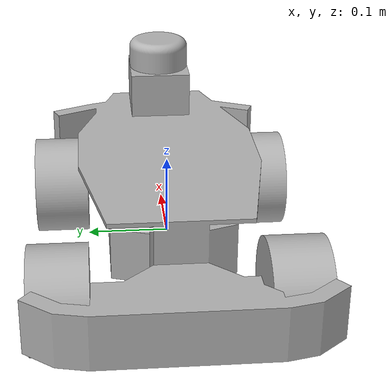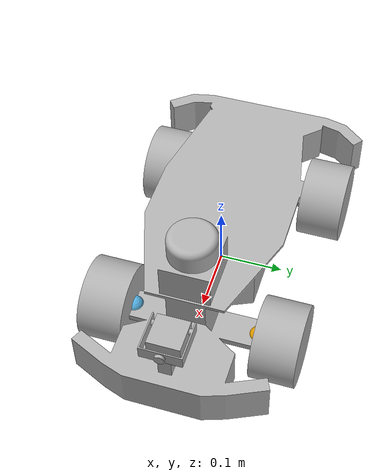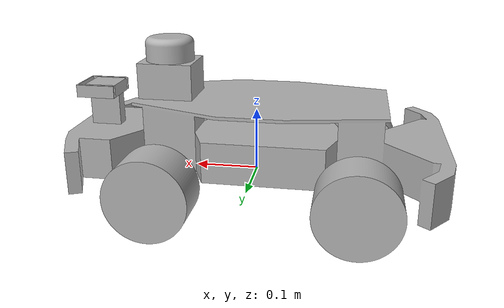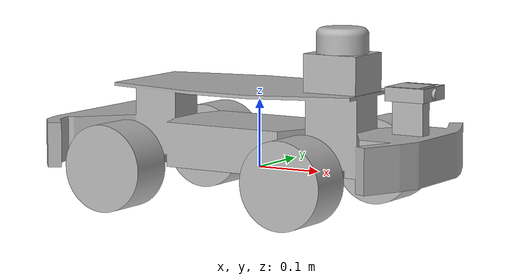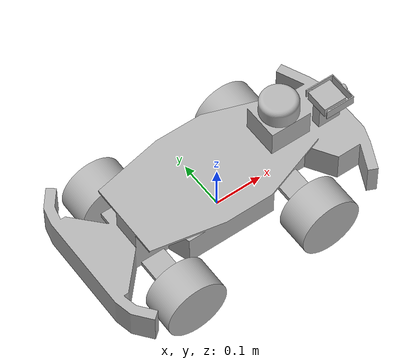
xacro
<?xml version="1.0" ?>
<robot name="AutoCar" xmlns:xacro="http://www.ros.org/wiki/xacro">

<xacro:include filename="$(find auto_car_description)/urdf/materials.xacro" />
<xacro:include filename="$(find auto_car_description)/urdf/AutoCar.trans" />
<xacro:include filename="$(find auto_car_description)/urdf/AutoCar.gazebo" />
<link name="base_link">
  <inertial>
    <origin xyz="0.006241047940893729 1.7542466020202997e-05 0.04792208933122006" rpy="0 0 0"/>
    <mass value="51.74527306163868"/>
    <inertia ixx="0.210744" iyy="1.719578" izz="1.775248" ixy="-0.00012" iyz="-9.1e-05" ixz="-0.04364"/>
  </inertial>
  <visual>
    <origin xyz="0 0 0" rpy="0 0 0"/>
    <geometry>
      <mesh filename="file://$(find auto_car_description)/meshes/base_link.stl" scale="0.001 0.001 0.001"/>
    </geometry>
    <material name="silver"/>
  </visual>
  <collision>
    <origin xyz="0 0 0" rpy="0 0 0"/>
    <geometry>
      <mesh filename="file://$(find auto_car_description)/meshes/base_link.stl" scale="0.001 0.001 0.001"/>
    </geometry>
  </collision>
</link>

<link name="front_left_wheel_1">
  <inertial>
    <origin xyz="0.0 0.035 0.0" rpy="0 0 0"/>
    <mass value="7.0709459482525325"/>
    <inertia ixx="0.010128" iyy="0.014481" izz="0.010128" ixy="0.0" iyz="0.0" ixz="0.0"/>
  </inertial>
  <visual>
    <origin xyz="-0.135 -0.1 -0.005" rpy="0 0 0"/>
    <geometry>
      <mesh filename="file://$(find auto_car_description)/meshes/front_left_wheel_1.stl" scale="0.001 0.001 0.001"/>
    </geometry>
    <material name="silver"/>
  </visual>
  <collision>
    <origin xyz="-0.135 -0.1 -0.005" rpy="0 0 0"/>
    <geometry>
      <mesh filename="file://$(find auto_car_description)/meshes/front_left_wheel_1.stl" scale="0.001 0.001 0.001"/>
    </geometry>
  </collision>
</link>

<link name="front_right_wheel_1">
  <inertial>
    <origin xyz="0.0 -0.035 0.0" rpy="0 0 0"/>
    <mass value="7.0709459482525325"/>
    <inertia ixx="0.010128" iyy="0.014481" izz="0.010128" ixy="0.0" iyz="0.0" ixz="0.0"/>
  </inertial>
  <visual>
    <origin xyz="-0.135 0.1 -0.005" rpy="0 0 0"/>
    <geometry>
      <mesh filename="file://$(find auto_car_description)/meshes/front_right_wheel_1.stl" scale="0.001 0.001 0.001"/>
    </geometry>
    <material name="silver"/>
  </visual>
  <collision>
    <origin xyz="-0.135 0.1 -0.005" rpy="0 0 0"/>
    <geometry>
      <mesh filename="file://$(find auto_car_description)/meshes/front_right_wheel_1.stl" scale="0.001 0.001 0.001"/>
    </geometry>
  </collision>
</link>

<link name="rear_left_wheel_1">
  <inertial>
    <origin xyz="0.0 0.035 0.0" rpy="0 0 0"/>
    <mass value="7.0709459482525325"/>
    <inertia ixx="0.010128" iyy="0.014481" izz="0.010128" ixy="0.0" iyz="0.0" ixz="-0.0"/>
  </inertial>
  <visual>
    <origin xyz="0.165 -0.1 -0.005" rpy="0 0 0"/>
    <geometry>
      <mesh filename="file://$(find auto_car_description)/meshes/rear_left_wheel_1.stl" scale="0.001 0.001 0.001"/>
    </geometry>
    <material name="silver"/>
  </visual>
  <collision>
    <origin xyz="0.165 -0.1 -0.005" rpy="0 0 0"/>
    <geometry>
      <mesh filename="file://$(find auto_car_description)/meshes/rear_left_wheel_1.stl" scale="0.001 0.001 0.001"/>
    </geometry>
  </collision>
</link>

<link name="rear_right_wheel_1">
  <inertial>
    <origin xyz="0.0 -0.035 0.0" rpy="0 0 0"/>
    <mass value="7.0709459482525325"/>
    <inertia ixx="0.010128" iyy="0.014481" izz="0.010128" ixy="0.0" iyz="-0.0" ixz="-0.0"/>
  </inertial>
  <visual>
    <origin xyz="0.165 0.1 -0.005" rpy="0 0 0"/>
    <geometry>
      <mesh filename="file://$(find auto_car_description)/meshes/rear_right_wheel_1.stl" scale="0.001 0.001 0.001"/>
    </geometry>
    <material name="silver"/>
  </visual>
  <collision>
    <origin xyz="0.165 0.1 -0.005" rpy="0 0 0"/>
    <geometry>
      <mesh filename="file://$(find auto_car_description)/meshes/rear_right_wheel_1.stl" scale="0.001 0.001 0.001"/>
    </geometry>
  </collision>
</link>

<link name="camera_rotate_servo_1">
  <inertial>
    <origin xyz="0.001018906391389518 -1.7763568394002506e-16 0.00999999999998398" rpy="0 0 0"/>
    <mass value="0.3675302288901849"/>
    <inertia ixx="9e-05" iyy="8.9e-05" izz="0.000152" ixy="0.0" iyz="0.0" ixz="-0.0"/>
  </inertial>
  <visual>
    <origin xyz="-0.250626 -0.0 -0.116" rpy="0 0 0"/>
    <geometry>
      <mesh filename="file://$(find auto_car_description)/meshes/camera_rotate_servo_1.stl" scale="0.001 0.001 0.001"/>
    </geometry>
    <material name="silver"/>
  </visual>
  <collision>
    <origin xyz="-0.250626 -0.0 -0.116" rpy="0 0 0"/>
    <geometry>
      <mesh filename="file://$(find auto_car_description)/meshes/camera_rotate_servo_1.stl" scale="0.001 0.001 0.001"/>
    </geometry>
  </collision>
</link>

<link name="camera_tilt_servo_1">
  <inertial>
    <origin xyz="0.02297270847794408 3.293785511004899e-10 1.1765838303645637e-11" rpy="0 0 0"/>
    <mass value="0.09526148376679884"/>
    <inertia ixx="5.4e-05" iyy="5.3e-05" izz="0.000103" ixy="-0.0" iyz="-0.0" ixz="-0.0"/>
  </inertial>
  <visual>
    <origin xyz="-0.235626 -0.0 -0.126" rpy="0 0 0"/>
    <geometry>
      <mesh filename="file://$(find auto_car_description)/meshes/camera_tilt_servo_1.stl" scale="0.001 0.001 0.001"/>
    </geometry>
    <material name="silver"/>
  </visual>
  <collision>
    <origin xyz="-0.235626 -0.0 -0.126" rpy="0 0 0"/>
    <geometry>
      <mesh filename="file://$(find auto_car_description)/meshes/camera_tilt_servo_1.stl" scale="0.001 0.001 0.001"/>
    </geometry>
  </collision>
</link>

<link name="lidar_1">
  <inertial>
    <origin xyz="-1.4978991194625202e-07 -6.94672942983649e-08 0.018020517916249423" rpy="0 0 0"/>
    <mass value="1.2797567850628393"/>
    <inertia ixx="0.000591" iyy="0.000591" izz="0.000902" ixy="-0.0" iyz="0.0" ixz="0.0"/>
  </inertial>
  <visual>
    <origin xyz="-0.138818 -0.000316 -0.176" rpy="0 0 0"/>
    <geometry>
      <mesh filename="file://$(find auto_car_description)/meshes/lidar_1.stl" scale="0.001 0.001 0.001"/>
    </geometry>
    <material name="silver"/>
  </visual>
  <collision>
    <origin xyz="-0.138818 -0.000316 -0.176" rpy="0 0 0"/>
    <geometry>
      <mesh filename="file://$(find auto_car_description)/meshes/lidar_1.stl" scale="0.001 0.001 0.001"/>
    </geometry>
  </collision>
</link>

<link name="front_left_hinge">
  <visual>
    <origin rpy="0 0 0" xyz="0 0 0"/>
    <geometry>
      <sphere radius="0.015"/>
    </geometry>
  </visual>
</link>
<joint name="front_left_hinge_joint" type="revolute">
  <parent link="base_link"/>
  <child link="front_left_hinge"/>
  <origin rpy="0 0 0" xyz="0.135 0.1 0.005"/>
  <axis xyz="0 0 1"/>
  <limit effort="10" lower="-0.34" upper="0.34" velocity="100"/>
</joint>

<link name="front_right_hinge">
  <visual>
    <origin rpy="0 0 0" xyz="0 0 0"/>
    <geometry>
      <sphere radius="0.015"/>
    </geometry>
  </visual>
</link>
<joint name="front_right_hinge_joint" type="revolute">
  <parent link="base_link"/>
  <child link="front_right_hinge"/>
  <origin rpy="0 0 0" xyz="0.135 -0.1 0.005"/>
  <axis xyz="0 0 1"/>
  <limit effort="10" lower="-0.34" upper="0.34" velocity="100"/>
</joint>

<link name="imu_link">
  <collision>
    <origin xyz="0 0 0" rpy="0 0 0"/>
    <geometry>
      <box size="0.1 0.1 0.1"/>
    </geometry>
  </collision>
  <inertial>
    <mass value="1e-5" />
    <origin xyz="0 0 0" rpy="0 0 0"/>
    <inertia ixx="1e-6" ixy="0" ixz="0" iyy="1e-6" iyz="0" izz="1e-6" />
  </inertial>
</link>

<joint name="imu_joint" type="fixed">
  <origin xyz="-0.039 0 0.0859" rpy="0 0 0"/>
  <parent link="base_link"/>
  <child link="imu_link"/>
</joint>

<joint name="joint_front_left" type="continuous">
  <origin xyz="0 0 0" rpy="0 0 0"/>
  <parent link="front_left_hinge"/>
  <child link="front_left_wheel_1"/>
  <axis xyz="0.0 1.0 0.0"/>
</joint>

<joint name="joint_front_right" type="continuous">
  <origin xyz="0 0 0" rpy="0 0 0"/>
  <parent link="front_right_hinge"/>
  <child link="front_right_wheel_1"/>
  <axis xyz="0.0 -1.0 0.0"/>
</joint>

<joint name="joint_rear_left" type="continuous">
  <origin xyz="-0.165 0.1 0.005" rpy="0 0 0"/>
  <parent link="base_link"/>
  <child link="rear_left_wheel_1"/>
  <axis xyz="0.0 1.0 0.0"/>
</joint>

<joint name="joint_rear_right" type="continuous">
  <origin xyz="-0.165 -0.1 0.005" rpy="0 0 0"/>
  <parent link="base_link"/>
  <child link="rear_right_wheel_1"/>
  <axis xyz="0.0 -1.0 0.0"/>
</joint>

<joint name="joint_cam_rotate" type="continuous">
  <origin xyz="0.250626 0.0 0.116" rpy="0 0 0"/>
  <parent link="base_link"/>
  <child link="camera_rotate_servo_1"/>
  <axis xyz="0.0 0.0 1.0"/>
</joint>

<joint name="joint_cam_tilt" type="continuous">
  <origin xyz="-0.015 0.0 0.01" rpy="0 0 0"/>
  <parent link="camera_rotate_servo_1"/>
  <child link="camera_tilt_servo_1"/>
  <axis xyz="0.0 1.0 0.0"/>
</joint>

<joint name="joint_lidar" type="continuous">
  <origin xyz="0.138818 0.000316 0.176" rpy="0 0 0"/>
  <parent link="base_link"/>
  <child link="lidar_1"/>
  <axis xyz="0.0 0.0 1.0"/>
</joint>

</robot>

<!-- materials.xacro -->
<robot name="AutoCar" xmlns:xacro="http://www.ros.org/wiki/xacro" >

<material name="silver">
  <color rgba="0.700 0.700 0.700 1.000"/>
</material>

</robot>

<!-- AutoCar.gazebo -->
<robot name="AutoCar" xmlns:xacro="http://www.ros.org/wiki/xacro" >

<xacro:property name="body_color" value="Gazebo/Silver" />

<gazebo>
  <plugin name="control" filename="libgazebo_ros_control.so"/>
</gazebo>
<gazebo reference="base_link">
  <material>${body_color}</material>
  <mu1>0.2</mu1>
  <mu2>0.2</mu2>
  <self_collide>true</self_collide>
  <gravity>true</gravity>
</gazebo>

<gazebo reference="front_left_wheel_1">
  <material>${body_color}</material>
  <mu1>0.2</mu1>
  <mu2>0.2</mu2>
  <self_collide>true</self_collide>
</gazebo>

<gazebo reference="front_right_wheel_1">
  <material>${body_color}</material>
  <mu1>0.2</mu1>
  <mu2>0.2</mu2>
  <self_collide>true</self_collide>
</gazebo>

<gazebo reference="rear_left_wheel_1">
  <material>${body_color}</material>
  <mu1>0.2</mu1>
  <mu2>0.2</mu2>
  <self_collide>true</self_collide>
</gazebo>

<gazebo reference="rear_right_wheel_1">
  <material>${body_color}</material>
  <mu1>0.2</mu1>
  <mu2>0.2</mu2>
  <self_collide>true</self_collide>
</gazebo>

<gazebo reference="camera_rotate_servo_1">
  <material>${body_color}</material>
  <mu1>0.2</mu1>
  <mu2>0.2</mu2>
  <self_collide>true</self_collide>
</gazebo>

<gazebo reference="camera_tilt_servo_1">
  <material>${body_color}</material>
  <mu1>0.2</mu1>
  <mu2>0.2</mu2>
  <self_collide>true</self_collide>
</gazebo>

<gazebo reference="lidar_1">
  <material>${body_color}</material>
  <mu1>0.2</mu1>
  <mu2>0.2</mu2>
  <self_collide>true</self_collide>
</gazebo>

</robot>
